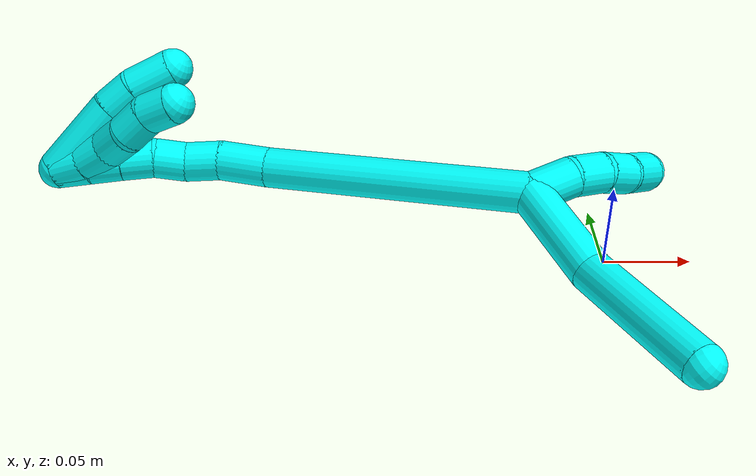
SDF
<sdf version="1.7">
 <world name="default">
  <model name="3">
   <static>0</static>
   <link name="3">
    <collision name="collision-cylinder-e_1_2_8">
     <pose>0.020261 0.023057 -0.003816 -1.73479 0.714253 -0.828924</pose>
     <geometry><cylinder><radius>0.0125</radius><length>0.061861</length></cylinder></geometry>
     <surface>
      <friction><ode><mu>1.16</mu><mu2>1.16</mu2><slip1>0</slip1><slip2>0</slip2></ode></friction>
      <contact><ode><kp>1e+06</kp><kd>1</kd><max_vel>0</max_vel><min_depth>0.001</min_depth></ode></contact>
     </surface>
    </collision>
    <visual name="visual-cylinder-e_1_2_8">
     <pose>0.020261 0.023057 -0.003816 -1.73479 0.714253 -0.828924</pose>
     <geometry><cylinder><radius>0.0125</radius><length>0.061861</length></cylinder></geometry>
     <material><ambient>0.003922 1 0.996078 1</ambient></material>
    </visual>
    <collision name="collision-cylinder-e_2_8_6">
     <pose>0.06097 0.081974 -0.02306 -1.9771 0.482493 -0.715261</pose>
     <geometry><cylinder><radius>0.0125</radius><length>0.088139</length></cylinder></geometry>
     <surface>
      <friction><ode><mu>1.16</mu><mu2>1.16</mu2><slip1>0</slip1><slip2>0</slip2></ode></friction>
      <contact><ode><kp>1e+06</kp><kd>1</kd><max_vel>0</max_vel><min_depth>0.001</min_depth></ode></contact>
     </surface>
    </collision>
    <visual name="visual-cylinder-e_2_8_6">
     <pose>0.06097 0.081974 -0.02306 -1.9771 0.482493 -0.715261</pose>
     <geometry><cylinder><radius>0.0125</radius><length>0.088139</length></cylinder></geometry>
     <material><ambient>0.003922 1 0.996078 1</ambient></material>
    </visual>
    <collision name="collision-cylinder-e_1_2_9">
     <pose>0.007143 -0.007456 -0.00964 2.48327 0.530184 1.34307</pose>
     <geometry><cylinder><radius>0.0125</radius><length>0.028251</length></cylinder></geometry>
     <surface>
      <friction><ode><mu>1.16</mu><mu2>1.16</mu2><slip1>0</slip1><slip2>0</slip2></ode></friction>
      <contact><ode><kp>1e+06</kp><kd>1</kd><max_vel>0</max_vel><min_depth>0.001</min_depth></ode></contact>
     </surface>
    </collision>
    <visual name="visual-cylinder-e_1_2_9">
     <pose>0.007143 -0.007456 -0.00964 2.48327 0.530184 1.34307</pose>
     <geometry><cylinder><radius>0.0125</radius><length>0.028251</length></cylinder></geometry>
     <material><ambient>0.003922 1 0.996078 1</ambient></material>
    </visual>
    <collision name="collision-cylinder-e_2_9_10">
     <pose>0.021793 -0.02096 -0.024698 2.30129 0.746076 1.43881</pose>
     <geometry><cylinder><radius>0.0125</radius><length>0.022118</length></cylinder></geometry>
     <surface>
      <friction><ode><mu>1.16</mu><mu2>1.16</mu2><slip1>0</slip1><slip2>0</slip2></ode></friction>
      <contact><ode><kp>1e+06</kp><kd>1</kd><max_vel>0</max_vel><min_depth>0.001</min_depth></ode></contact>
     </surface>
    </collision>
    <visual name="visual-cylinder-e_2_9_10">
     <pose>0.021793 -0.02096 -0.024698 2.30129 0.746076 1.43881</pose>
     <geometry><cylinder><radius>0.0125</radius><length>0.022118</length></cylinder></geometry>
     <material><ambient>0.003922 1 0.996078 1</ambient></material>
    </visual>
    <collision name="collision-cylinder-e_3_10_11">
     <pose>0.037272 -0.033884 -0.032724 1.93323 0.825836 1.13104</pose>
     <geometry><cylinder><radius>0.0125</radius><length>0.02169</length></cylinder></geometry>
     <surface>
      <friction><ode><mu>1.16</mu><mu2>1.16</mu2><slip1>0</slip1><slip2>0</slip2></ode></friction>
      <contact><ode><kp>1e+06</kp><kd>1</kd><max_vel>0</max_vel><min_depth>0.001</min_depth></ode></contact>
     </surface>
    </collision>
    <visual name="visual-cylinder-e_3_10_11">
     <pose>0.037272 -0.033884 -0.032724 1.93323 0.825836 1.13104</pose>
     <geometry><cylinder><radius>0.0125</radius><length>0.02169</length></cylinder></geometry>
     <material><ambient>0.003922 1 0.996078 1</ambient></material>
    </visual>
    <collision name="collision-cylinder-e_4_11_5">
     <pose>0.053691 -0.051775 -0.0369 1.71228 0.649259 0.740004</pose>
     <geometry><cylinder><radius>0.0125</radius><length>0.02794</length></cylinder></geometry>
     <surface>
      <friction><ode><mu>1.16</mu><mu2>1.16</mu2><slip1>0</slip1><slip2>0</slip2></ode></friction>
      <contact><ode><kp>1e+06</kp><kd>1</kd><max_vel>0</max_vel><min_depth>0.001</min_depth></ode></contact>
     </surface>
    </collision>
    <visual name="visual-cylinder-e_4_11_5">
     <pose>0.053691 -0.051775 -0.0369 1.71228 0.649259 0.740004</pose>
     <geometry><cylinder><radius>0.0125</radius><length>0.02794</length></cylinder></geometry>
     <material><ambient>0.003922 1 0.996078 1</ambient></material>
    </visual>
    <collision name="collision-cylinder-e_1_2_12">
     <pose>-0.056814 -0.013842 0.057867 0.234791 -0.762315 -0.094458</pose>
     <geometry><cylinder><radius>0.0125</radius><length>0.164537</length></cylinder></geometry>
     <surface>
      <friction><ode><mu>1.16</mu><mu2>1.16</mu2><slip1>0</slip1><slip2>0</slip2></ode></friction>
      <contact><ode><kp>1e+06</kp><kd>1</kd><max_vel>0</max_vel><min_depth>0.001</min_depth></ode></contact>
     </surface>
    </collision>
    <visual name="visual-cylinder-e_1_2_12">
     <pose>-0.056814 -0.013842 0.057867 0.234791 -0.762315 -0.094458</pose>
     <geometry><cylinder><radius>0.0125</radius><length>0.164537</length></cylinder></geometry>
     <material><ambient>0.003922 1 0.996078 1</ambient></material>
    </visual>
    <collision name="collision-cylinder-e_2_12_13">
     <pose>-0.125627 -0.029374 0.125916 0.164451 -0.860412 -0.075596</pose>
     <geometry><cylinder><radius>0.0125</radius><length>0.031652</length></cylinder></geometry>
     <surface>
      <friction><ode><mu>1.16</mu><mu2>1.16</mu2><slip1>0</slip1><slip2>0</slip2></ode></friction>
      <contact><ode><kp>1e+06</kp><kd>1</kd><max_vel>0</max_vel><min_depth>0.001</min_depth></ode></contact>
     </surface>
    </collision>
    <visual name="visual-cylinder-e_2_12_13">
     <pose>-0.125627 -0.029374 0.125916 0.164451 -0.860412 -0.075596</pose>
     <geometry><cylinder><radius>0.0125</radius><length>0.031652</length></cylinder></geometry>
     <material><ambient>0.003922 1 0.996078 1</ambient></material>
    </visual>
    <collision name="collision-cylinder-e_3_13_14">
     <pose>-0.145289 -0.030019 0.144162 -0.128827 -0.75578 0.0512</pose>
     <geometry><cylinder><radius>0.0125</radius><length>0.022349</length></cylinder></geometry>
     <surface>
      <friction><ode><mu>1.16</mu><mu2>1.16</mu2><slip1>0</slip1><slip2>0</slip2></ode></friction>
      <contact><ode><kp>1e+06</kp><kd>1</kd><max_vel>0</max_vel><min_depth>0.001</min_depth></ode></contact>
     </surface>
    </collision>
    <visual name="visual-cylinder-e_3_13_14">
     <pose>-0.145289 -0.030019 0.144162 -0.128827 -0.75578 0.0512</pose>
     <geometry><cylinder><radius>0.0125</radius><length>0.022349</length></cylinder></geometry>
     <material><ambient>0.003922 1 0.996078 1</ambient></material>
    </visual>
    <collision name="collision-cylinder-e_4_14_15">
     <pose>-0.161304 -0.026912 0.157419 -0.377985 -0.981179 0.203631</pose>
     <geometry><cylinder><radius>0.0125</radius><length>0.020096</length></cylinder></geometry>
     <surface>
      <friction><ode><mu>1.16</mu><mu2>1.16</mu2><slip1>0</slip1><slip2>0</slip2></ode></friction>
      <contact><ode><kp>1e+06</kp><kd>1</kd><max_vel>0</max_vel><min_depth>0.001</min_depth></ode></contact>
     </surface>
    </collision>
    <visual name="visual-cylinder-e_4_14_15">
     <pose>-0.161304 -0.026912 0.157419 -0.377985 -0.981179 0.203631</pose>
     <geometry><cylinder><radius>0.0125</radius><length>0.020096</length></cylinder></geometry>
     <material><ambient>0.003922 1 0.996078 1</ambient></material>
    </visual>
    <collision name="collision-cylinder-e_5_15_16">
     <pose>-0.176651 -0.022405 0.169719 -0.331314 -0.749578 0.13135</pose>
     <geometry><cylinder><radius>0.0125</radius><length>0.020535</length></cylinder></geometry>
     <surface>
      <friction><ode><mu>1.16</mu><mu2>1.16</mu2><slip1>0</slip1><slip2>0</slip2></ode></friction>
      <contact><ode><kp>1e+06</kp><kd>1</kd><max_vel>0</max_vel><min_depth>0.001</min_depth></ode></contact>
     </surface>
    </collision>
    <visual name="visual-cylinder-e_5_15_16">
     <pose>-0.176651 -0.022405 0.169719 -0.331314 -0.749578 0.13135</pose>
     <geometry><cylinder><radius>0.0125</radius><length>0.020535</length></cylinder></geometry>
     <material><ambient>0.003922 1 0.996078 1</ambient></material>
    </visual>
    <collision name="collision-cylinder-e_6_16_17">
     <pose>-0.190243 -0.017908 0.184137 -0.27371 -0.715212 0.10283</pose>
     <geometry><cylinder><radius>0.0125</radius><length>0.020119</length></cylinder></geometry>
     <surface>
      <friction><ode><mu>1.16</mu><mu2>1.16</mu2><slip1>0</slip1><slip2>0</slip2></ode></friction>
      <contact><ode><kp>1e+06</kp><kd>1</kd><max_vel>0</max_vel><min_depth>0.001</min_depth></ode></contact>
     </surface>
    </collision>
    <visual name="visual-cylinder-e_6_16_17">
     <pose>-0.190243 -0.017908 0.184137 -0.27371 -0.715212 0.10283</pose>
     <geometry><cylinder><radius>0.0125</radius><length>0.020119</length></cylinder></geometry>
     <material><ambient>0.003922 1 0.996078 1</ambient></material>
    </visual>
    <collision name="collision-cylinder-e_7_17_1">
     <pose>-0.203252 -0.015086 0.199545 -0.09475 -0.667704 0.032884</pose>
     <geometry><cylinder><radius>0.0125</radius><length>0.020713</length></cylinder></geometry>
     <surface>
      <friction><ode><mu>1.16</mu><mu2>1.16</mu2><slip1>0</slip1><slip2>0</slip2></ode></friction>
      <contact><ode><kp>1e+06</kp><kd>1</kd><max_vel>0</max_vel><min_depth>0.001</min_depth></ode></contact>
     </surface>
    </collision>
    <visual name="visual-cylinder-e_7_17_1">
     <pose>-0.203252 -0.015086 0.199545 -0.09475 -0.667704 0.032884</pose>
     <geometry><cylinder><radius>0.0125</radius><length>0.020713</length></cylinder></geometry>
     <material><ambient>0.003922 1 0.996078 1</ambient></material>
    </visual>
    <collision name="collision-cylinder-e_1_1_18">
     <pose>-0.205015 -0.014014 0.198793 -3.10741 0.483634 -3.00322</pose>
     <geometry><cylinder><radius>0.0125</radius><length>0.02</length></cylinder></geometry>
     <surface>
      <friction><ode><mu>1.16</mu><mu2>1.16</mu2><slip1>0</slip1><slip2>0</slip2></ode></friction>
      <contact><ode><kp>1e+06</kp><kd>1</kd><max_vel>0</max_vel><min_depth>0.001</min_depth></ode></contact>
     </surface>
    </collision>
    <visual name="visual-cylinder-e_1_1_18">
     <pose>-0.205015 -0.014014 0.198793 -3.10741 0.483634 -3.00322</pose>
     <geometry><cylinder><radius>0.0125</radius><length>0.02</length></cylinder></geometry>
     <material><ambient>0.003922 1 0.996078 1</ambient></material>
    </visual>
    <collision name="collision-cylinder-e_2_18_19">
     <pose>-0.197952 -0.012988 0.180267 -3.06696 0.243727 -2.54983</pose>
     <geometry><cylinder><radius>0.0125</radius><length>0.02</length></cylinder></geometry>
     <surface>
      <friction><ode><mu>1.16</mu><mu2>1.16</mu2><slip1>0</slip1><slip2>0</slip2></ode></friction>
      <contact><ode><kp>1e+06</kp><kd>1</kd><max_vel>0</max_vel><min_depth>0.001</min_depth></ode></contact>
     </surface>
    </collision>
    <visual name="visual-cylinder-e_2_18_19">
     <pose>-0.197952 -0.012988 0.180267 -3.06696 0.243727 -2.54983</pose>
     <geometry><cylinder><radius>0.0125</radius><length>0.02</length></cylinder></geometry>
     <material><ambient>0.003922 1 0.996078 1</ambient></material>
    </visual>
    <collision name="collision-cylinder-e_3_19_20">
     <pose>-0.194442 -0.009913 0.160932 -2.90281 0.109821 -0.859305</pose>
     <geometry><cylinder><radius>0.0125</radius><length>0.02</length></cylinder></geometry>
     <surface>
      <friction><ode><mu>1.16</mu><mu2>1.16</mu2><slip1>0</slip1><slip2>0</slip2></ode></friction>
      <contact><ode><kp>1e+06</kp><kd>1</kd><max_vel>0</max_vel><min_depth>0.001</min_depth></ode></contact>
     </surface>
    </collision>
    <visual name="visual-cylinder-e_3_19_20">
     <pose>-0.194442 -0.009913 0.160932 -2.90281 0.109821 -0.859305</pose>
     <geometry><cylinder><radius>0.0125</radius><length>0.02</length></cylinder></geometry>
     <material><ambient>0.003922 1 0.996078 1</ambient></material>
    </visual>
    <collision name="collision-cylinder-e_4_20_21">
     <pose>-0.192748 -0.007707 0.141293 3.12709 0.059915 2.66679</pose>
     <geometry><cylinder><radius>0.0125</radius><length>0.02</length></cylinder></geometry>
     <surface>
      <friction><ode><mu>1.16</mu><mu2>1.16</mu2><slip1>0</slip1><slip2>0</slip2></ode></friction>
      <contact><ode><kp>1e+06</kp><kd>1</kd><max_vel>0</max_vel><min_depth>0.001</min_depth></ode></contact>
     </surface>
    </collision>
    <visual name="visual-cylinder-e_4_20_21">
     <pose>-0.192748 -0.007707 0.141293 3.12709 0.059915 2.66679</pose>
     <geometry><cylinder><radius>0.0125</radius><length>0.02</length></cylinder></geometry>
     <material><ambient>0.003922 1 0.996078 1</ambient></material>
    </visual>
    <collision name="collision-cylinder-e_5_21_4">
     <pose>-0.188545 -0.006772 0.122047 -3.02562 0.368623 -2.53783</pose>
     <geometry><cylinder><radius>0.0125</radius><length>0.02</length></cylinder></geometry>
     <surface>
      <friction><ode><mu>1.16</mu><mu2>1.16</mu2><slip1>0</slip1><slip2>0</slip2></ode></friction>
      <contact><ode><kp>1e+06</kp><kd>1</kd><max_vel>0</max_vel><min_depth>0.001</min_depth></ode></contact>
     </surface>
    </collision>
    <visual name="visual-cylinder-e_5_21_4">
     <pose>-0.188545 -0.006772 0.122047 -3.02562 0.368623 -2.53783</pose>
     <geometry><cylinder><radius>0.0125</radius><length>0.02</length></cylinder></geometry>
     <material><ambient>0.003922 1 0.996078 1</ambient></material>
    </visual>
    <collision name="collision-cylinder-e_1_1_22">
     <pose>-0.209981 -0.0206 0.181984 2.90139 -0.011963 -0.099044</pose>
     <geometry><cylinder><radius>0.0125</radius><length>0.052833</length></cylinder></geometry>
     <surface>
      <friction><ode><mu>1.16</mu><mu2>1.16</mu2><slip1>0</slip1><slip2>0</slip2></ode></friction>
      <contact><ode><kp>1e+06</kp><kd>1</kd><max_vel>0</max_vel><min_depth>0.001</min_depth></ode></contact>
     </surface>
    </collision>
    <visual name="visual-cylinder-e_1_1_22">
     <pose>-0.209981 -0.0206 0.181984 2.90139 -0.011963 -0.099044</pose>
     <geometry><cylinder><radius>0.0125</radius><length>0.052833</length></cylinder></geometry>
     <material><ambient>0.003922 1 0.996078 1</ambient></material>
    </visual>
    <collision name="collision-cylinder-e_2_22_23">
     <pose>-0.208909 -0.028856 0.146562 2.94238 0.138408 1.2128</pose>
     <geometry><cylinder><radius>0.0125</radius><length>0.020118</length></cylinder></geometry>
     <surface>
      <friction><ode><mu>1.16</mu><mu2>1.16</mu2><slip1>0</slip1><slip2>0</slip2></ode></friction>
      <contact><ode><kp>1e+06</kp><kd>1</kd><max_vel>0</max_vel><min_depth>0.001</min_depth></ode></contact>
     </surface>
    </collision>
    <visual name="visual-cylinder-e_2_22_23">
     <pose>-0.208909 -0.028856 0.146562 2.94238 0.138408 1.2128</pose>
     <geometry><cylinder><radius>0.0125</radius><length>0.020118</length></cylinder></geometry>
     <material><ambient>0.003922 1 0.996078 1</ambient></material>
    </visual>
    <collision name="collision-cylinder-e_3_23_3">
     <pose>-0.202712 -0.033826 0.124516 2.9021 0.363521 1.98227</pose>
     <geometry><cylinder><radius>0.0125</radius><length>0.027048</length></cylinder></geometry>
     <surface>
      <friction><ode><mu>1.16</mu><mu2>1.16</mu2><slip1>0</slip1><slip2>0</slip2></ode></friction>
      <contact><ode><kp>1e+06</kp><kd>1</kd><max_vel>0</max_vel><min_depth>0.001</min_depth></ode></contact>
     </surface>
    </collision>
    <visual name="visual-cylinder-e_3_23_3">
     <pose>-0.202712 -0.033826 0.124516 2.9021 0.363521 1.98227</pose>
     <geometry><cylinder><radius>0.0125</radius><length>0.027048</length></cylinder></geometry>
     <material><ambient>0.003922 1 0.996078 1</ambient></material>
    </visual>
    <collision name="collision-sphere-3">
     <pose>-0.197904 -0.036825 0.112237 0 -0 0</pose>
     <geometry><sphere><radius>0.0125</radius></sphere></geometry>
     <surface>
      <friction><ode><mu>1.16</mu><mu2>1.16</mu2><slip1>0</slip1><slip2>0</slip2></ode></friction>
      <contact><ode><kp>1e+06</kp><kd>1</kd><max_vel>0</max_vel><min_depth>0.001</min_depth></ode></contact>
     </surface>
    </collision>
    <visual name="visual-sphere-3">
     <pose>-0.197904 -0.036825 0.112237 0 -0 0</pose>
     <geometry><sphere><radius>0.0125</radius></sphere></geometry>
     <material><ambient>0.003922 1 0.996078 1</ambient></material>
    </visual>
    <collision name="collision-sphere-23">
     <pose>-0.207521 -0.030828 0.136796 0 -0 0</pose>
     <geometry><sphere><radius>0.0125</radius></sphere></geometry>
     <surface>
      <friction><ode><mu>1.16</mu><mu2>1.16</mu2><slip1>0</slip1><slip2>0</slip2></ode></friction>
      <contact><ode><kp>1e+06</kp><kd>1</kd><max_vel>0</max_vel><min_depth>0.001</min_depth></ode></contact>
     </surface>
    </collision>
    <visual name="visual-sphere-23">
     <pose>-0.207521 -0.030828 0.136796 0 -0 0</pose>
     <geometry><sphere><radius>0.0125</radius></sphere></geometry>
     <material><ambient>0.003922 1 0.996078 1</ambient></material>
    </visual>
    <collision name="collision-sphere-22">
     <pose>-0.210297 -0.026884 0.156328 0 -0 0</pose>
     <geometry><sphere><radius>0.0125</radius></sphere></geometry>
     <surface>
      <friction><ode><mu>1.16</mu><mu2>1.16</mu2><slip1>0</slip1><slip2>0</slip2></ode></friction>
      <contact><ode><kp>1e+06</kp><kd>1</kd><max_vel>0</max_vel><min_depth>0.001</min_depth></ode></contact>
     </surface>
    </collision>
    <visual name="visual-sphere-22">
     <pose>-0.210297 -0.026884 0.156328 0 -0 0</pose>
     <geometry><sphere><radius>0.0125</radius></sphere></geometry>
     <material><ambient>0.003922 1 0.996078 1</ambient></material>
    </visual>
    <collision name="collision-sphere-4">
     <pose>-0.184942 -0.005693 0.112781 0 -0 0</pose>
     <geometry><sphere><radius>0.0125</radius></sphere></geometry>
     <surface>
      <friction><ode><mu>1.16</mu><mu2>1.16</mu2><slip1>0</slip1><slip2>0</slip2></ode></friction>
      <contact><ode><kp>1e+06</kp><kd>1</kd><max_vel>0</max_vel><min_depth>0.001</min_depth></ode></contact>
     </surface>
    </collision>
    <visual name="visual-sphere-4">
     <pose>-0.184942 -0.005693 0.112781 0 -0 0</pose>
     <geometry><sphere><radius>0.0125</radius></sphere></geometry>
     <material><ambient>0.003922 1 0.996078 1</ambient></material>
    </visual>
    <collision name="collision-sphere-21">
     <pose>-0.192149 -0.007852 0.131312 0 -0 0</pose>
     <geometry><sphere><radius>0.0125</radius></sphere></geometry>
     <surface>
      <friction><ode><mu>1.16</mu><mu2>1.16</mu2><slip1>0</slip1><slip2>0</slip2></ode></friction>
      <contact><ode><kp>1e+06</kp><kd>1</kd><max_vel>0</max_vel><min_depth>0.001</min_depth></ode></contact>
     </surface>
    </collision>
    <visual name="visual-sphere-21">
     <pose>-0.192149 -0.007852 0.131312 0 -0 0</pose>
     <geometry><sphere><radius>0.0125</radius></sphere></geometry>
     <material><ambient>0.003922 1 0.996078 1</ambient></material>
    </visual>
    <collision name="collision-sphere-20">
     <pose>-0.193346 -0.007562 0.151274 0 -0 0</pose>
     <geometry><sphere><radius>0.0125</radius></sphere></geometry>
     <surface>
      <friction><ode><mu>1.16</mu><mu2>1.16</mu2><slip1>0</slip1><slip2>0</slip2></ode></friction>
      <contact><ode><kp>1e+06</kp><kd>1</kd><max_vel>0</max_vel><min_depth>0.001</min_depth></ode></contact>
     </surface>
    </collision>
    <visual name="visual-sphere-20">
     <pose>-0.193346 -0.007562 0.151274 0 -0 0</pose>
     <geometry><sphere><radius>0.0125</radius></sphere></geometry>
     <material><ambient>0.003922 1 0.996078 1</ambient></material>
    </visual>
    <collision name="collision-sphere-11">
     <pose>0.045244 -0.040759 -0.035331 0 -0 0</pose>
     <geometry><sphere><radius>0.0125</radius></sphere></geometry>
     <surface>
      <friction><ode><mu>1.16</mu><mu2>1.16</mu2><slip1>0</slip1><slip2>0</slip2></ode></friction>
      <contact><ode><kp>1e+06</kp><kd>1</kd><max_vel>0</max_vel><min_depth>0.001</min_depth></ode></contact>
     </surface>
    </collision>
    <visual name="visual-sphere-11">
     <pose>0.045244 -0.040759 -0.035331 0 -0 0</pose>
     <geometry><sphere><radius>0.0125</radius></sphere></geometry>
     <material><ambient>0.003922 1 0.996078 1</ambient></material>
    </visual>
    <collision name="collision-sphere-10">
     <pose>0.029299 -0.027009 -0.030117 0 -0 0</pose>
     <geometry><sphere><radius>0.0125</radius></sphere></geometry>
     <surface>
      <friction><ode><mu>1.16</mu><mu2>1.16</mu2><slip1>0</slip1><slip2>0</slip2></ode></friction>
      <contact><ode><kp>1e+06</kp><kd>1</kd><max_vel>0</max_vel><min_depth>0.001</min_depth></ode></contact>
     </surface>
    </collision>
    <visual name="visual-sphere-10">
     <pose>0.029299 -0.027009 -0.030117 0 -0 0</pose>
     <geometry><sphere><radius>0.0125</radius></sphere></geometry>
     <material><ambient>0.003922 1 0.996078 1</ambient></material>
    </visual>
    <collision name="collision-sphere-6">
     <pose>0.081418 0.117835 -0.038488 0 -0 0</pose>
     <geometry><sphere><radius>0.0125</radius></sphere></geometry>
     <surface>
      <friction><ode><mu>1.16</mu><mu2>1.16</mu2><slip1>0</slip1><slip2>0</slip2></ode></friction>
      <contact><ode><kp>1e+06</kp><kd>1</kd><max_vel>0</max_vel><min_depth>0.001</min_depth></ode></contact>
     </surface>
    </collision>
    <visual name="visual-sphere-6">
     <pose>0.081418 0.117835 -0.038488 0 -0 0</pose>
     <geometry><sphere><radius>0.0125</radius></sphere></geometry>
     <material><ambient>0.003922 1 0.996078 1</ambient></material>
    </visual>
    <collision name="collision-sphere-9">
     <pose>0.014286 -0.014911 -0.019279 0 -0 0</pose>
     <geometry><sphere><radius>0.0125</radius></sphere></geometry>
     <surface>
      <friction><ode><mu>1.16</mu><mu2>1.16</mu2><slip1>0</slip1><slip2>0</slip2></ode></friction>
      <contact><ode><kp>1e+06</kp><kd>1</kd><max_vel>0</max_vel><min_depth>0.001</min_depth></ode></contact>
     </surface>
    </collision>
    <visual name="visual-sphere-9">
     <pose>0.014286 -0.014911 -0.019279 0 -0 0</pose>
     <geometry><sphere><radius>0.0125</radius></sphere></geometry>
     <material><ambient>0.003922 1 0.996078 1</ambient></material>
    </visual>
    <collision name="collision-sphere-2">
     <geometry><sphere><radius>0.0125</radius></sphere></geometry>
     <surface>
      <friction><ode><mu>1.16</mu><mu2>1.16</mu2><slip1>0</slip1><slip2>0</slip2></ode></friction>
      <contact><ode><kp>1e+06</kp><kd>1</kd><max_vel>0</max_vel><min_depth>0.001</min_depth></ode></contact>
     </surface>
    </collision>
    <visual name="visual-sphere-2">
     <geometry><sphere><radius>0.0125</radius></sphere></geometry>
     <material><ambient>0.003922 1 0.996078 1</ambient></material>
    </visual>
    <collision name="collision-sphere-19">
     <pose>-0.195538 -0.012264 0.17059 0 -0 0</pose>
     <geometry><sphere><radius>0.0125</radius></sphere></geometry>
     <surface>
      <friction><ode><mu>1.16</mu><mu2>1.16</mu2><slip1>0</slip1><slip2>0</slip2></ode></friction>
      <contact><ode><kp>1e+06</kp><kd>1</kd><max_vel>0</max_vel><min_depth>0.001</min_depth></ode></contact>
     </surface>
    </collision>
    <visual name="visual-sphere-19">
     <pose>-0.195538 -0.012264 0.17059 0 -0 0</pose>
     <geometry><sphere><radius>0.0125</radius></sphere></geometry>
     <material><ambient>0.003922 1 0.996078 1</ambient></material>
    </visual>
    <collision name="collision-sphere-8">
     <pose>0.040523 0.046114 -0.007631 0 -0 0</pose>
     <geometry><sphere><radius>0.0125</radius></sphere></geometry>
     <surface>
      <friction><ode><mu>1.16</mu><mu2>1.16</mu2><slip1>0</slip1><slip2>0</slip2></ode></friction>
      <contact><ode><kp>1e+06</kp><kd>1</kd><max_vel>0</max_vel><min_depth>0.001</min_depth></ode></contact>
     </surface>
    </collision>
    <visual name="visual-sphere-8">
     <pose>0.040523 0.046114 -0.007631 0 -0 0</pose>
     <geometry><sphere><radius>0.0125</radius></sphere></geometry>
     <material><ambient>0.003922 1 0.996078 1</ambient></material>
    </visual>
    <collision name="collision-sphere-5">
     <pose>0.062137 -0.062792 -0.038469 0 -0 0</pose>
     <geometry><sphere><radius>0.0125</radius></sphere></geometry>
     <surface>
      <friction><ode><mu>1.16</mu><mu2>1.16</mu2><slip1>0</slip1><slip2>0</slip2></ode></friction>
      <contact><ode><kp>1e+06</kp><kd>1</kd><max_vel>0</max_vel><min_depth>0.001</min_depth></ode></contact>
     </surface>
    </collision>
    <visual name="visual-sphere-5">
     <pose>0.062137 -0.062792 -0.038469 0 -0 0</pose>
     <geometry><sphere><radius>0.0125</radius></sphere></geometry>
     <material><ambient>0.003922 1 0.996078 1</ambient></material>
    </visual>
    <collision name="collision-sphere-12">
     <pose>-0.113629 -0.027684 0.115735 0 -0 0</pose>
     <geometry><sphere><radius>0.0125</radius></sphere></geometry>
     <surface>
      <friction><ode><mu>1.16</mu><mu2>1.16</mu2><slip1>0</slip1><slip2>0</slip2></ode></friction>
      <contact><ode><kp>1e+06</kp><kd>1</kd><max_vel>0</max_vel><min_depth>0.001</min_depth></ode></contact>
     </surface>
    </collision>
    <visual name="visual-sphere-12">
     <pose>-0.113629 -0.027684 0.115735 0 -0 0</pose>
     <geometry><sphere><radius>0.0125</radius></sphere></geometry>
     <material><ambient>0.003922 1 0.996078 1</ambient></material>
    </visual>
    <collision name="collision-sphere-13">
     <pose>-0.137625 -0.031063 0.136097 0 -0 0</pose>
     <geometry><sphere><radius>0.0125</radius></sphere></geometry>
     <surface>
      <friction><ode><mu>1.16</mu><mu2>1.16</mu2><slip1>0</slip1><slip2>0</slip2></ode></friction>
      <contact><ode><kp>1e+06</kp><kd>1</kd><max_vel>0</max_vel><min_depth>0.001</min_depth></ode></contact>
     </surface>
    </collision>
    <visual name="visual-sphere-13">
     <pose>-0.137625 -0.031063 0.136097 0 -0 0</pose>
     <geometry><sphere><radius>0.0125</radius></sphere></geometry>
     <material><ambient>0.003922 1 0.996078 1</ambient></material>
    </visual>
    <collision name="collision-sphere-14">
     <pose>-0.152953 -0.028974 0.152226 0 -0 0</pose>
     <geometry><sphere><radius>0.0125</radius></sphere></geometry>
     <surface>
      <friction><ode><mu>1.16</mu><mu2>1.16</mu2><slip1>0</slip1><slip2>0</slip2></ode></friction>
      <contact><ode><kp>1e+06</kp><kd>1</kd><max_vel>0</max_vel><min_depth>0.001</min_depth></ode></contact>
     </surface>
    </collision>
    <visual name="visual-sphere-14">
     <pose>-0.152953 -0.028974 0.152226 0 -0 0</pose>
     <geometry><sphere><radius>0.0125</radius></sphere></geometry>
     <material><ambient>0.003922 1 0.996078 1</ambient></material>
    </visual>
    <collision name="collision-sphere-15">
     <pose>-0.169655 -0.02485 0.162612 0 -0 0</pose>
     <geometry><sphere><radius>0.0125</radius></sphere></geometry>
     <surface>
      <friction><ode><mu>1.16</mu><mu2>1.16</mu2><slip1>0</slip1><slip2>0</slip2></ode></friction>
      <contact><ode><kp>1e+06</kp><kd>1</kd><max_vel>0</max_vel><min_depth>0.001</min_depth></ode></contact>
     </surface>
    </collision>
    <visual name="visual-sphere-15">
     <pose>-0.169655 -0.02485 0.162612 0 -0 0</pose>
     <geometry><sphere><radius>0.0125</radius></sphere></geometry>
     <material><ambient>0.003922 1 0.996078 1</ambient></material>
    </visual>
    <collision name="collision-sphere-16">
     <pose>-0.183646 -0.019961 0.176825 0 -0 0</pose>
     <geometry><sphere><radius>0.0125</radius></sphere></geometry>
     <surface>
      <friction><ode><mu>1.16</mu><mu2>1.16</mu2><slip1>0</slip1><slip2>0</slip2></ode></friction>
      <contact><ode><kp>1e+06</kp><kd>1</kd><max_vel>0</max_vel><min_depth>0.001</min_depth></ode></contact>
     </surface>
    </collision>
    <visual name="visual-sphere-16">
     <pose>-0.183646 -0.019961 0.176825 0 -0 0</pose>
     <geometry><sphere><radius>0.0125</radius></sphere></geometry>
     <material><ambient>0.003922 1 0.996078 1</ambient></material>
    </visual>
    <collision name="collision-sphere-17">
     <pose>-0.19684 -0.015855 0.191449 0 -0 0</pose>
     <geometry><sphere><radius>0.0125</radius></sphere></geometry>
     <surface>
      <friction><ode><mu>1.16</mu><mu2>1.16</mu2><slip1>0</slip1><slip2>0</slip2></ode></friction>
      <contact><ode><kp>1e+06</kp><kd>1</kd><max_vel>0</max_vel><min_depth>0.001</min_depth></ode></contact>
     </surface>
    </collision>
    <visual name="visual-sphere-17">
     <pose>-0.19684 -0.015855 0.191449 0 -0 0</pose>
     <geometry><sphere><radius>0.0125</radius></sphere></geometry>
     <material><ambient>0.003922 1 0.996078 1</ambient></material>
    </visual>
    <collision name="collision-sphere-1">
     <pose>-0.209665 -0.014316 0.20764 0 -0 0</pose>
     <geometry><sphere><radius>0.0125</radius></sphere></geometry>
     <surface>
      <friction><ode><mu>1.16</mu><mu2>1.16</mu2><slip1>0</slip1><slip2>0</slip2></ode></friction>
      <contact><ode><kp>1e+06</kp><kd>1</kd><max_vel>0</max_vel><min_depth>0.001</min_depth></ode></contact>
     </surface>
    </collision>
    <visual name="visual-sphere-1">
     <pose>-0.209665 -0.014316 0.20764 0 -0 0</pose>
     <geometry><sphere><radius>0.0125</radius></sphere></geometry>
     <material><ambient>0.003922 1 0.996078 1</ambient></material>
    </visual>
    <collision name="collision-sphere-18">
     <pose>-0.200365 -0.013711 0.189945 0 -0 0</pose>
     <geometry><sphere><radius>0.0125</radius></sphere></geometry>
     <surface>
      <friction><ode><mu>1.16</mu><mu2>1.16</mu2><slip1>0</slip1><slip2>0</slip2></ode></friction>
      <contact><ode><kp>1e+06</kp><kd>1</kd><max_vel>0</max_vel><min_depth>0.001</min_depth></ode></contact>
     </surface>
    </collision>
    <visual name="visual-sphere-18">
     <pose>-0.200365 -0.013711 0.189945 0 -0 0</pose>
     <geometry><sphere><radius>0.0125</radius></sphere></geometry>
     <material><ambient>0.003922 1 0.996078 1</ambient></material>
    </visual>
    <inertial>
     <pose>-0.08295 -0.004491 0.077847 0 -0 0</pose>
     <mass>0.75</mass>
     <inertia>
      <ixx>0.000276</ixx>
      <ixy>0</ixy>
      <ixz>0</ixz>
      <iyy>0.000319</iyy>
      <iyz>0</iyz>
      <izz>0.00022</izz>
     </inertia>
    </inertial>
   </link>
   <pose>-0.040333 0.028903 0.02903 3.03504 0.725029 -0.216258</pose>
  </model>
 </world>
</sdf>
